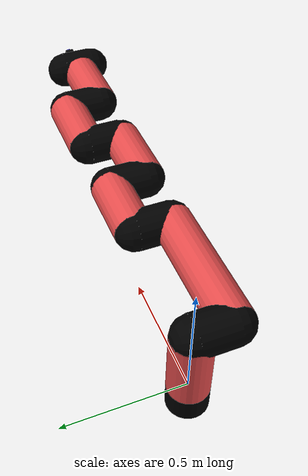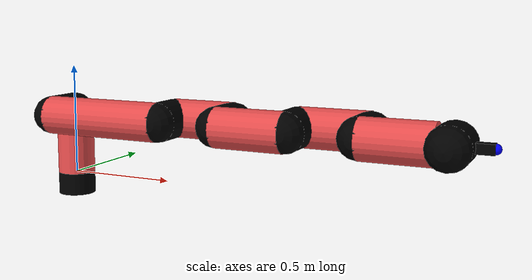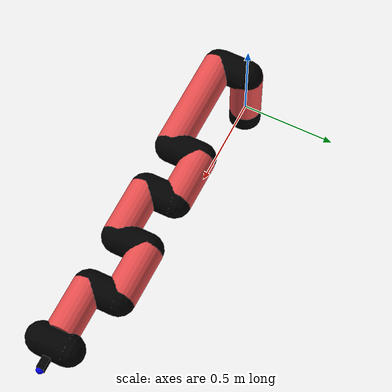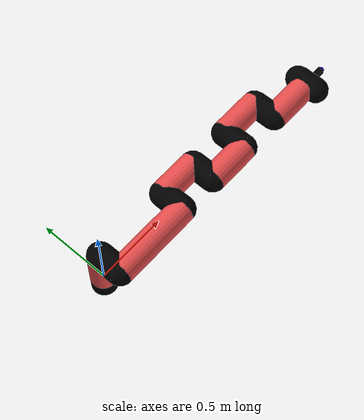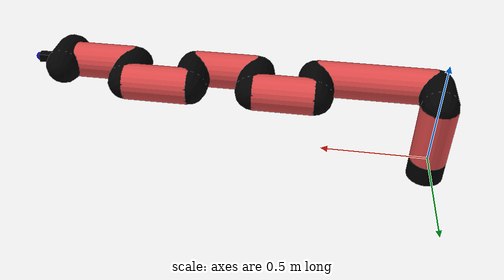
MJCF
<mujoco model="manipulator">
		<compiler angle="degree" coordinate="local" inertiafromgeom="auto" meshdir="meshes/"/>
		<option gravity="0 0 0" integrator="RK4" iterations="30" timestep="0.01"/>

		<default>
		<joint armature="1" limited="true" stiffness="10" damping="15" frictionloss="5.0"/>
		<geom conaffinity="1" condim="3" contype="1" friction=".5 .1 .1" margin="0.002"/>
		<motor ctrllimited="true"/>
		<position ctrllimited="true"/>
		</default>

		<asset>
		<texture builtin="gradient" height="100" rgb1="1.0 1.0 1.0" rgb2="1.0 1.0 1.0" type="skybox" width="100"/>
		<texture builtin="flat" height="32" name="arm_tex" rgb1="0.9 0.3 0.3" type="2d" width="32"/>
		<texture builtin="flat" height="32" name="gripper_tex" rgb1="0.0 0.0 0.0" type="cube" width="32"/>

		<material name="arm_mat" shininess="0.1" specular="0.1" texture="arm_tex"/>
		<material name="gripper_mat" shininess="1" specular="1" texture="gripper_tex"/>
		</asset>

		<worldbody>
		<light cutoff="45" diffuse=".8 .8 .8" dir="0 0.16 -1" directional="false" name="light" pos="0 -2.0 8.0" specular="0.3 0.3 0.3"/>

		<body name="base_link" pos="0 0 -0.1">
		<geom fromto="0 0 0 0 0 0.1" material="arm_mat" name="base_link" rgba="0.0 0.0 0.0 1" size="0.085" type="cylinder"/>
		</body>

		<body name="l1" pos="0 0 0">
<geom fromto="0 0 0 0 0 0.29" material="arm_mat" name="l1" rgba="0.9 0.3 0.3 1" size="0.085" type="cylinder"/>
<geom fromto="0 0 0.29 0 -0.16 0.29" material="arm_mat" name="l1_ex" rgba="0.0 0.0 0.0 1" size="0.085" type="capsule"/>
<joint axis="0 0 1" name="j1" pos="0 0 0" range="-90 90" damping="36.44" frictionloss="9.16"/>

<body name="l2" pos="0 -0.16 0.29">
<geom fromto="0 0 0 0.55 0 0" material="arm_mat" name="l2" rgba="0.9 0.3 0.3 1" size="0.085" type="cylinder"/>
<geom fromto="0.55 0 0 0.55 0.16 0" material="arm_mat" name="l2_ex" rgba="0.0 0.0 0.0 1" size="0.085" type="capsule"/>
<joint axis="0.0 1.0 0.0" name="j2" pos="0 0 0" range="-90 60" damping="27.74" frictionloss="11.04"/>

<body name="l3" pos="0.55 0.16 0">
<geom fromto="0 0 0 0.28 0 0" material="arm_mat" name="l3" rgba="0.9 0.3 0.3 1" size="0.085" type="cylinder"/>
<geom fromto="0.28 0 0 0.28 -0.16 0" material="arm_mat" name="l3_ex" rgba="0.0 0.0 0.0 1" size="0.085" type="capsule"/>
<joint axis="0.0 1.0 0.0" name="j3" pos="0 0 0" range="-30 60" damping="34.12" frictionloss="7.86"/>

<body name="l4" pos="0.28 -0.16 0">
<geom fromto="0 0 0 0.3 0 0" material="arm_mat" name="l4" rgba="0.9 0.3 0.3 1" size="0.085" type="cylinder"/>
<geom fromto="0.3 0 0 0.3 0.16 0" material="arm_mat" name="l4_ex" rgba="0.0 0.0 0.0 1" size="0.085" type="capsule"/>
<joint axis="0.0 1.0 0.0" name="j4" pos="0 0 0" range="-30 60" damping="27.85" frictionloss="12.29"/>

<body name="l5" pos="0.3 0.16 0">
<geom fromto="0 0 0 0.3 0 0" material="arm_mat" name="l5" rgba="0.9 0.3 0.3 1" size="0.085" type="cylinder"/>
<geom fromto="0.3 0 0 0.3 -0.16 0" material="arm_mat" name="l5_ex" rgba="0.0 0.0 0.0 1" size="0.085" type="capsule"/>
<joint axis="0.0 1.0 0.0" name="j5" pos="0 0 0" range="-30 60" damping="36.82" frictionloss="9.39"/>

<body name="l6" pos="0.3 -0.16 0">
<geom fromto="0 0 0 0.29 0 0" material="arm_mat" name="l6" rgba="0.9 0.3 0.3 1" size="0.085" type="cylinder"/>
<joint axis="0.0 1.0 0.0" name="j6" pos="0 0 0" range="-30 60" damping="32.47" frictionloss="8.82"/>

<body name="gripper" pos="0.29 0 0">
<geom fromto="0.05 -0.07 0 0.05 0.07 0" material="gripper_mat" name="gripper" rgba="0.0 0.0 0.0 1" size="0.085" type="capsule"/><joint axis="1 0 0" name="j7" pos="0 0 0" range="-90 90" damping="15" frictionloss="5.0"/><body name="finger" pos="0.1 0 0">
<geom fromto="0 0.0 0 0.1 0.0 0" material="gripper_mat" name="finger" rgba="0.0 0.0 0.0 1" size="0.020 0.06 0.06" type="box"/>
</body>
<site name="current" pos="0.2 0. 0.0" rgba="0. 0. 1.0 1" size="0.02" type="sphere"/>
</body>
</body>
</body>
</body>
</body>
</body>
</body>
</worldbody>
<actuator>
<motor ctrllimited="true" ctrlrange="-1.0 1.0" joint="j1" gear="81.48"/>
<motor ctrllimited="true" ctrlrange="-1.0 1.0" joint="j2" gear="96.65"/>
<motor ctrllimited="true" ctrlrange="-1.0 1.0" joint="j3" gear="96.3"/>
<motor ctrllimited="true" ctrlrange="-1.0 1.0" joint="j4" gear="63.7"/>
<motor ctrllimited="true" ctrlrange="-1.0 1.0" joint="j5" gear="70.51"/>
<motor ctrllimited="true" ctrlrange="-1.0 1.0" joint="j6" gear="97.75"/>
<motor ctrllimited="true" ctrlrange="-1.0 1.0" joint="j7" gear="80"/>
</actuator>
</mujoco>
